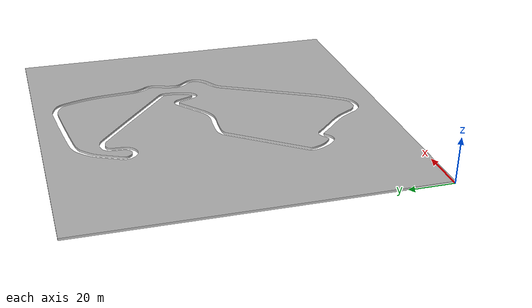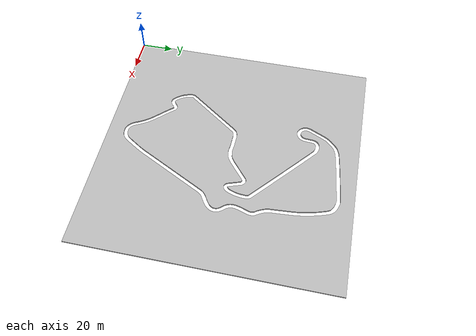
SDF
<?xml version='1.0'?>

<sdf version='1.4'>

  <model name="silverstone_track">

    <link name="link">

      <collision name="collision">
        <geometry>
          <mesh>
            <uri>model://audubon-gazebo/world/silverstone_track/silverstone_track.stl</uri>
          </mesh>
        </geometry>
      </collision>

      <visual name="visual">
        <geometry>
          <mesh>
            <uri>model://audubon-gazebo/world/silverstone_track/silverstone_track.stl</uri>
          </mesh>
        </geometry>
      </visual>

    </link>

    <static>1</static>

  </model>

</sdf>
